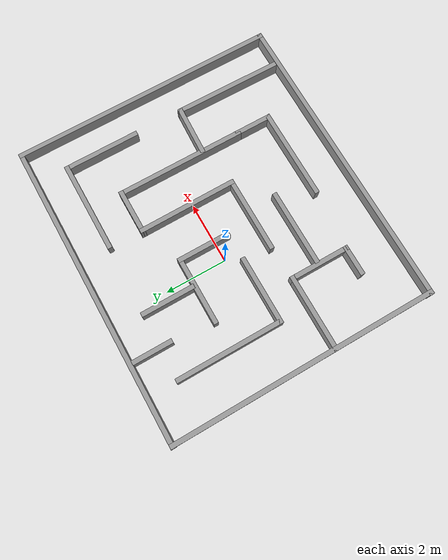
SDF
<?xml version='1.0'?>
<sdf version='1.7'>
  <model name='maze'>
    <pose>1.00308 -0.4 0 0 -0 0</pose>
    <link name='Wall_1'>
      <collision name='Wall_1_Collision'>
        <geometry>
          <box>
            <size>10.0038 0.15 0.5</size>
          </box>
        </geometry>
        <pose>0 0 0.25 0 -0 0</pose>
      </collision>
      <visual name='Wall_1_Visual'>
        <pose>0 0 0.25 0 -0 0</pose>
        <geometry>
          <box>
            <size>10.0038 0.15 0.5</size>
          </box>
        </geometry>
        <material>
          <script>
            <uri>file://media/materials/scripts/gazebo.material</uri>
            <name>Gazebo/Grey</name>
          </script>
          <ambient>1 1 1 1</ambient>
        </material>
        <meta>
          <layer>0</layer>
        </meta>
      </visual>
      <pose>-0 4.3 0 0 -0 0</pose>
    </link>
    <link name='Wall_13'>
      <collision name='Wall_13_Collision'>
        <geometry>
          <box>
            <size>1 0.15 0.5</size>
          </box>
        </geometry>
        <pose>0 0 0.25 0 -0 0</pose>
      </collision>
      <visual name='Wall_13_Visual'>
        <pose>0 0 0.25 0 -0 0</pose>
        <geometry>
          <box>
            <size>1 0.15 0.5</size>
          </box>
        </geometry>
        <material>
          <script>
            <uri>file://media/materials/scripts/gazebo.material</uri>
            <name>Gazebo/Grey</name>
          </script>
          <ambient>1 1 1 1</ambient>
        </material>
        <meta>
          <layer>0</layer>
        </meta>
      </visual>
      <pose>-2.97008 -2.861 0 0 -0 3.14159</pose>
    </link>
    <link name='Wall_15'>
      <collision name='Wall_15_Collision'>
        <geometry>
          <box>
            <size>2.5 0.15 0.5</size>
          </box>
        </geometry>
        <pose>0 0 0.25 0 -0 0</pose>
      </collision>
      <visual name='Wall_15_Visual'>
        <pose>0 0 0.25 0 -0 0</pose>
        <geometry>
          <box>
            <size>2.5 0.15 0.5</size>
          </box>
        </geometry>
        <material>
          <script>
            <uri>file://media/materials/scripts/gazebo.material</uri>
            <name>Gazebo/Grey</name>
          </script>
          <ambient>1 1 1 1</ambient>
        </material>
        <meta>
          <layer>0</layer>
        </meta>
      </visual>
      <pose>-1.25908 -1.89 0 0 -0 0</pose>
    </link>
    <link name='Wall_17'>
      <collision name='Wall_17_Collision'>
        <geometry>
          <box>
            <size>2.49989 0.15 0.5</size>
          </box>
        </geometry>
        <pose>0 0 0.25 0 -0 0</pose>
      </collision>
      <visual name='Wall_17_Visual'>
        <pose>0 0 0.25 0 -0 0</pose>
        <geometry>
          <box>
            <size>2.49989 0.15 0.5</size>
          </box>
        </geometry>
        <material>
          <script>
            <uri>file://media/materials/scripts/gazebo.material</uri>
            <name>Gazebo/Grey</name>
          </script>
          <ambient>1 1 1 1</ambient>
        </material>
        <meta>
          <layer>0</layer>
        </meta>
      </visual>
      <pose>-0.226084 -0.942 0 0 -0 0</pose>
    </link>
    <link name='Wall_18'>
      <collision name='Wall_18_Collision'>
        <geometry>
          <box>
            <size>3.25 0.15 0.5</size>
          </box>
        </geometry>
        <pose>0 0 0.25 0 -0 0</pose>
      </collision>
      <visual name='Wall_18_Visual'>
        <pose>0 0 0.25 0 -0 0</pose>
        <geometry>
          <box>
            <size>3.25 0.15 0.5</size>
          </box>
        </geometry>
        <material>
          <script>
            <uri>file://media/materials/scripts/gazebo.material</uri>
            <name>Gazebo/Grey</name>
          </script>
          <ambient>1 1 1 1</ambient>
        </material>
        <meta>
          <layer>0</layer>
        </meta>
      </visual>
      <pose>0.941416 0.608 0 0 -0 1.57563</pose>
    </link>
    <link name='Wall_19'>
      <collision name='Wall_19_Collision'>
        <geometry>
          <box>
            <size>1.5 0.15 0.5</size>
          </box>
        </geometry>
        <pose>0 0 0.25 0 -0 0</pose>
      </collision>
      <visual name='Wall_19_Visual'>
        <pose>0 0 0.25 0 -0 0</pose>
        <geometry>
          <box>
            <size>1.5 0.15 0.5</size>
          </box>
        </geometry>
        <material>
          <script>
            <uri>file://media/materials/scripts/gazebo.material</uri>
            <name>Gazebo/Grey</name>
          </script>
          <ambient>1 1 1 1</ambient>
        </material>
        <meta>
          <layer>0</layer>
        </meta>
      </visual>
      <pose>1.60892 2.158 0 0 -0 0</pose>
    </link>
    <link name='Wall_2'>
      <collision name='Wall_2_Collision'>
        <geometry>
          <box>
            <size>8.75 0.15 0.5</size>
          </box>
        </geometry>
        <pose>0 0 0.25 0 -0 0</pose>
      </collision>
      <visual name='Wall_2_Visual'>
        <pose>0 0 0.25 0 -0 0</pose>
        <geometry>
          <box>
            <size>8.75 0.15 0.5</size>
          </box>
        </geometry>
        <material>
          <script>
            <uri>file://media/materials/scripts/gazebo.material</uri>
            <name>Gazebo/Grey</name>
          </script>
          <ambient>1 1 1 1</ambient>
        </material>
        <meta>
          <layer>0</layer>
        </meta>
      </visual>
      <pose>4.92692 0 0 0 -0 -1.5708</pose>
    </link>
    <link name='Wall_20'>
      <collision name='Wall_20_Collision'>
        <geometry>
          <box>
            <size>4.25 0.15 0.5</size>
          </box>
        </geometry>
        <pose>0 0 0.25 0 -0 0</pose>
      </collision>
      <visual name='Wall_20_Visual'>
        <pose>0 0 0.25 0 -0 0</pose>
        <geometry>
          <box>
            <size>4.25 0.15 0.5</size>
          </box>
        </geometry>
        <material>
          <script>
            <uri>file://media/materials/scripts/gazebo.material</uri>
            <name>Gazebo/Grey</name>
          </script>
          <ambient>1 1 1 1</ambient>
        </material>
        <meta>
          <layer>0</layer>
        </meta>
      </visual>
      <pose>2.28392 0.108 0 0 -0 -1.5708</pose>
    </link>
    <link name='Wall_21'>
      <collision name='Wall_21_Collision'>
        <geometry>
          <box>
            <size>1.25 0.15 0.5</size>
          </box>
        </geometry>
        <pose>0 0 0.25 0 -0 0</pose>
      </collision>
      <visual name='Wall_21_Visual'>
        <pose>0 0 0.25 0 -0 0</pose>
        <geometry>
          <box>
            <size>1.25 0.15 0.5</size>
          </box>
        </geometry>
        <material>
          <script>
            <uri>file://media/materials/scripts/gazebo.material</uri>
            <name>Gazebo/Grey</name>
          </script>
          <ambient>1 1 1 1</ambient>
        </material>
        <meta>
          <layer>0</layer>
        </meta>
      </visual>
      <pose>2.28392 -2.492 0 0 -0 -1.5708</pose>
    </link>
    <link name='Wall_22'>
      <collision name='Wall_22_Collision'>
        <geometry>
          <box>
            <size>3 0.15 0.5</size>
          </box>
        </geometry>
        <pose>0 0 0.25 0 -0 0</pose>
      </collision>
      <visual name='Wall_22_Visual'>
        <pose>0 0 0.25 0 -0 0</pose>
        <geometry>
          <box>
            <size>3 0.15 0.5</size>
          </box>
        </geometry>
        <material>
          <script>
            <uri>file://media/materials/scripts/gazebo.material</uri>
            <name>Gazebo/Grey</name>
          </script>
          <ambient>1 1 1 1</ambient>
        </material>
        <meta>
          <layer>0</layer>
        </meta>
      </visual>
      <pose>0.858916 -3.042 0 0 -0 3.14159</pose>
    </link>
    <link name='Wall_24'>
      <collision name='Wall_24_Collision'>
        <geometry>
          <box>
            <size>2.25 0.15 0.5</size>
          </box>
        </geometry>
        <pose>0 0 0.25 0 -0 0</pose>
      </collision>
      <visual name='Wall_24_Visual'>
        <pose>0 0 0.25 0 -0 0</pose>
        <geometry>
          <box>
            <size>2.25 0.15 0.5</size>
          </box>
        </geometry>
        <material>
          <script>
            <uri>file://media/materials/scripts/gazebo.material</uri>
            <name>Gazebo/Grey</name>
          </script>
          <ambient>1 1 1 1</ambient>
        </material>
        <meta>
          <layer>0</layer>
        </meta>
      </visual>
      <pose>-1.47608 1.602 0 0 -0 0</pose>
    </link>
    <link name='Wall_25'>
      <collision name='Wall_25_Collision'>
        <geometry>
          <box>
            <size>1.75 0.15 0.5</size>
          </box>
        </geometry>
        <pose>0 0 0.25 0 -0 0</pose>
      </collision>
      <visual name='Wall_25_Visual'>
        <pose>0 0 0.25 0 -0 0</pose>
        <geometry>
          <box>
            <size>1.75 0.15 0.5</size>
          </box>
        </geometry>
        <material>
          <script>
            <uri>file://media/materials/scripts/gazebo.material</uri>
            <name>Gazebo/Grey</name>
          </script>
          <ambient>1 1 1 1</ambient>
        </material>
        <meta>
          <layer>0</layer>
        </meta>
      </visual>
      <pose>-0.426084 0.802 0 0 -0 -1.5708</pose>
    </link>
    <link name='Wall_28'>
      <collision name='Wall_28_Collision'>
        <geometry>
          <box>
            <size>1.67997 0.15 0.5</size>
          </box>
        </geometry>
        <pose>0 0 0.25 0 -0 0</pose>
      </collision>
      <visual name='Wall_28_Visual'>
        <pose>0 0 0.25 0 -0 0</pose>
        <geometry>
          <box>
            <size>1.67997 0.15 0.5</size>
          </box>
        </geometry>
        <material>
          <script>
            <uri>file://media/materials/scripts/gazebo.material</uri>
            <name>Gazebo/Grey</name>
          </script>
          <ambient>1 1 1 1</ambient>
        </material>
        <meta>
          <layer>0</layer>
        </meta>
      </visual>
      <pose>3.07242 -0.699 0 0 -0 -0.04575</pose>
    </link>
    <link name='Wall_29'>
      <collision name='Wall_29_Collision'>
        <geometry>
          <box>
            <size>3.56083 0.15 0.5</size>
          </box>
        </geometry>
        <pose>0 0 0.25 0 -0 0</pose>
      </collision>
      <visual name='Wall_29_Visual'>
        <pose>0 0 0.25 0 -0 0</pose>
        <geometry>
          <box>
            <size>3.56083 0.15 0.5</size>
          </box>
        </geometry>
        <material>
          <script>
            <uri>file://media/materials/scripts/gazebo.material</uri>
            <name>Gazebo/Grey</name>
          </script>
          <ambient>1 1 1 1</ambient>
        </material>
        <meta>
          <layer>0</layer>
        </meta>
      </visual>
      <pose>3.82092 -2.439 0 0 -0 -1.58018</pose>
    </link>
    <link name='Wall_3'>
      <collision name='Wall_3_Collision'>
        <geometry>
          <box>
            <size>9.97335 0.15 0.5</size>
          </box>
        </geometry>
        <pose>0 0 0.25 0 -0 0</pose>
      </collision>
      <visual name='Wall_3_Visual'>
        <pose>0 0 0.25 0 -0 0</pose>
        <geometry>
          <box>
            <size>9.97335 0.15 0.5</size>
          </box>
        </geometry>
        <material>
          <script>
            <uri>file://media/materials/scripts/gazebo.material</uri>
            <name>Gazebo/Grey</name>
          </script>
          <ambient>1 1 1 1</ambient>
        </material>
        <meta>
          <layer>0</layer>
        </meta>
      </visual>
      <pose>0.015239 -4.3 0 0 -0 3.14159</pose>
    </link>
    <link name='Wall_31'>
      <collision name='Wall_31_Collision'>
        <geometry>
          <box>
            <size>3 0.15 0.5</size>
          </box>
        </geometry>
        <pose>0 0 0.25 0 -0 0</pose>
      </collision>
      <visual name='Wall_31_Visual'>
        <pose>0 0 0.25 0 -0 0</pose>
        <geometry>
          <box>
            <size>3 0.15 0.5</size>
          </box>
        </geometry>
        <material>
          <script>
            <uri>file://media/materials/scripts/gazebo.material</uri>
            <name>Gazebo/Grey</name>
          </script>
          <ambient>1 1 1 1</ambient>
        </material>
        <meta>
          <layer>0</layer>
        </meta>
      </visual>
      <pose>2.41492 3.245 0 0 -0 0</pose>
    </link>
    <link name='Wall_32'>
      <collision name='Wall_32_Collision'>
        <geometry>
          <box>
            <size>2.5 0.15 0.5</size>
          </box>
        </geometry>
        <pose>0 0 0.25 0 -0 0</pose>
      </collision>
      <visual name='Wall_32_Visual'>
        <pose>0 0 0.25 0 -0 0</pose>
        <geometry>
          <box>
            <size>2.5 0.15 0.5</size>
          </box>
        </geometry>
        <material>
          <script>
            <uri>file://media/materials/scripts/gazebo.material</uri>
            <name>Gazebo/Grey</name>
          </script>
          <ambient>1 1 1 1</ambient>
        </material>
        <meta>
          <layer>0</layer>
        </meta>
      </visual>
      <pose>3.83992 2.07 0 0 -0 -1.5708</pose>
    </link>
    <link name='Wall_34'>
      <collision name='Wall_34_Collision'>
        <geometry>
          <box>
            <size>1.75 0.15 0.5</size>
          </box>
        </geometry>
        <pose>0 0 0.25 0 -0 0</pose>
      </collision>
      <visual name='Wall_34_Visual'>
        <pose>0 0 0.25 0 -0 0</pose>
        <geometry>
          <box>
            <size>1.75 0.15 0.5</size>
          </box>
        </geometry>
        <material>
          <script>
            <uri>file://media/materials/scripts/gazebo.material</uri>
            <name>Gazebo/Grey</name>
          </script>
          <ambient>1 1 1 1</ambient>
        </material>
        <meta>
          <layer>0</layer>
        </meta>
      </visual>
      <pose>-1.31508 2.495 0 0 -0 1.5708</pose>
    </link>
    <link name='Wall_36'>
      <collision name='Wall_36_Collision'>
        <geometry>
          <box>
            <size>2 0.15 0.5</size>
          </box>
        </geometry>
        <pose>0 0 0.25 0 -0 0</pose>
      </collision>
      <visual name='Wall_36_Visual'>
        <pose>0 0 0.25 0 -0 0</pose>
        <geometry>
          <box>
            <size>2 0.15 0.5</size>
          </box>
        </geometry>
        <material>
          <script>
            <uri>file://media/materials/scripts/gazebo.material</uri>
            <name>Gazebo/Grey</name>
          </script>
          <ambient>1 1 1 1</ambient>
        </material>
        <meta>
          <layer>0</layer>
        </meta>
      </visual>
      <pose>-2.54508 -1.936 0 0 -0 1.5708</pose>
    </link>
    <link name='Wall_39'>
      <collision name='Wall_39_Collision'>
        <geometry>
          <box>
            <size>2.5 0.15 0.5</size>
          </box>
        </geometry>
        <pose>0 0 0.25 0 -0 0</pose>
      </collision>
      <visual name='Wall_39_Visual'>
        <pose>0 0 0.25 0 -0 0</pose>
        <geometry>
          <box>
            <size>2.5 0.15 0.5</size>
          </box>
        </geometry>
        <material>
          <script>
            <uri>file://media/materials/scripts/gazebo.material</uri>
            <name>Gazebo/Grey</name>
          </script>
          <ambient>1 1 1 1</ambient>
        </material>
        <meta>
          <layer>0</layer>
        </meta>
      </visual>
      <pose>-3.72008 -1.011 0 0 -0 3.14159</pose>
    </link>
    <link name='Wall_4'>
      <collision name='Wall_4_Collision'>
        <geometry>
          <box>
            <size>8.75005 0.15 0.5</size>
          </box>
        </geometry>
        <pose>0 0 0.25 0 -0 0</pose>
      </collision>
      <visual name='Wall_4_Visual'>
        <pose>0 0 0.25 0 -0 0</pose>
        <geometry>
          <box>
            <size>8.75005 0.15 0.5</size>
          </box>
        </geometry>
        <material>
          <script>
            <uri>file://media/materials/scripts/gazebo.material</uri>
            <name>Gazebo/Grey</name>
          </script>
          <ambient>1 1 1 1</ambient>
        </material>
        <meta>
          <layer>0</layer>
        </meta>
      </visual>
      <pose>-4.89845 0 0 0 -0 1.57434</pose>
    </link>
    <link name='Wall_6'>
      <collision name='Wall_6_Collision'>
        <geometry>
          <box>
            <size>3.5 0.15 0.5</size>
          </box>
        </geometry>
        <pose>0 0 0.25 0 -0 0</pose>
      </collision>
      <visual name='Wall_6_Visual'>
        <pose>0 0 0.25 0 -0 0</pose>
        <geometry>
          <box>
            <size>3.5 0.15 0.5</size>
          </box>
        </geometry>
        <material>
          <script>
            <uri>file://media/materials/scripts/gazebo.material</uri>
            <name>Gazebo/Grey</name>
          </script>
          <ambient>1 1 1 1</ambient>
        </material>
        <meta>
          <layer>0</layer>
        </meta>
      </visual>
      <pose>-3.45108 1.639 0 0 -0 -1.5708</pose>
    </link>
    <link name='Wall_7'>
      <collision name='Wall_7_Collision'>
        <geometry>
          <box>
            <size>2.25 0.15 0.5</size>
          </box>
        </geometry>
        <pose>0 0 0.25 0 -0 0</pose>
      </collision>
      <visual name='Wall_7_Visual'>
        <pose>0 0 0.25 0 -0 0</pose>
        <geometry>
          <box>
            <size>2.25 0.15 0.5</size>
          </box>
        </geometry>
        <material>
          <script>
            <uri>file://media/materials/scripts/gazebo.material</uri>
            <name>Gazebo/Grey</name>
          </script>
          <ambient>1 1 1 1</ambient>
        </material>
        <meta>
          <layer>0</layer>
        </meta>
      </visual>
      <pose>-2.40108 -0.036 0 0 -0 0</pose>
    </link>
    <link name='Wall_9'>
      <collision name='Wall_9_Collision'>
        <geometry>
          <box>
            <size>1.3 0.15 0.5</size>
          </box>
        </geometry>
        <pose>0 0 0.25 0 -0 0</pose>
      </collision>
      <visual name='Wall_9_Visual'>
        <pose>0 0 0.25 0 -0 0</pose>
        <geometry>
          <box>
            <size>1.3 0.15 0.5</size>
          </box>
        </geometry>
        <material>
          <script>
            <uri>file://media/materials/scripts/gazebo.material</uri>
            <name>Gazebo/Grey</name>
          </script>
          <ambient>1 1 1 1</ambient>
        </material>
        <meta>
          <layer>0</layer>
        </meta>
      </visual>
      <pose>-2.39808 3.581 0 0 -0 1.5708</pose>
    </link>
    <static>1</static>
  </model>
</sdf>
